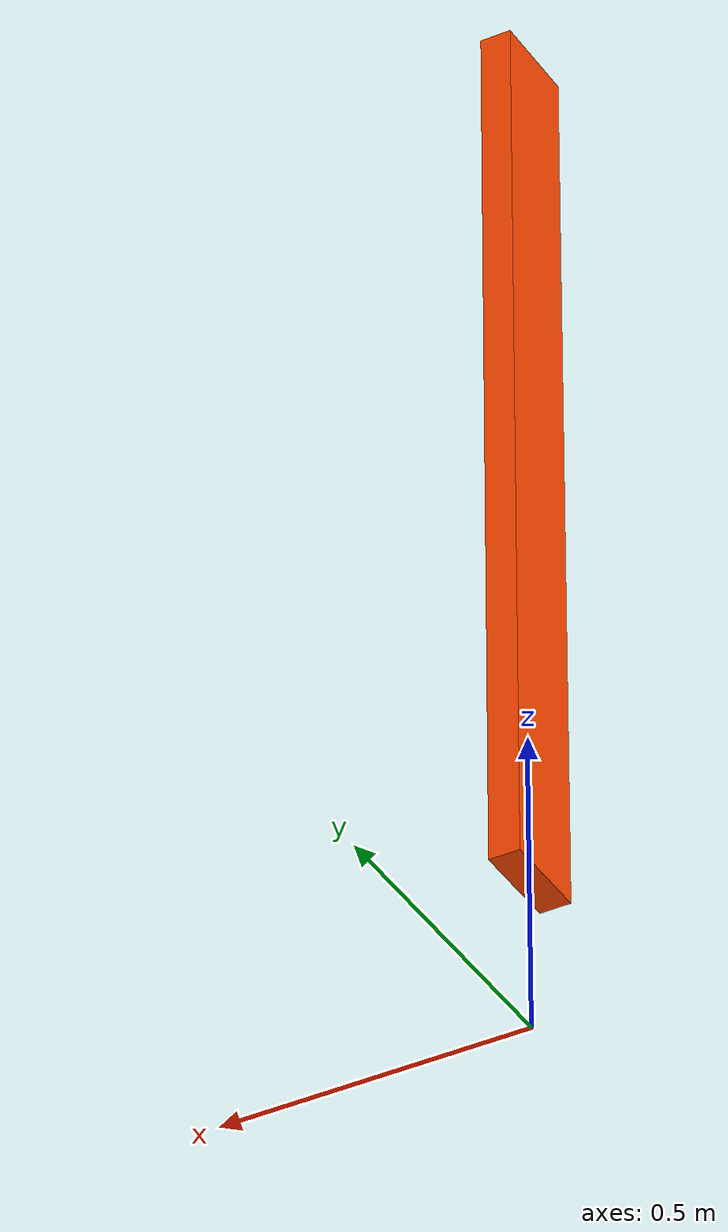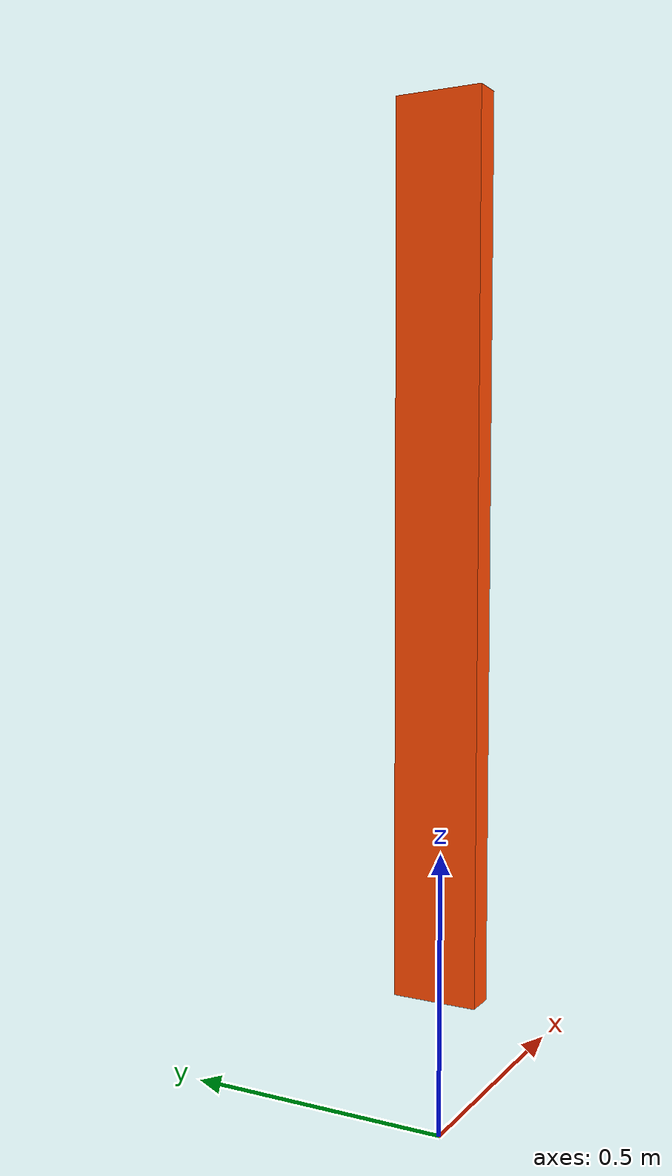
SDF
<?xml version="1.0"?>
<sdf version="1.11">
  <model name="sauvc_orange_flare">
    <static>false</static>
    <link name="link">
      <collision name="orange_flare_collision">
        <pose>0 0 0 0 0 0</pose>
        <geometry>
          <mesh>
            <scale>1 1 1</scale>
            <uri>model://sauvc_orange_flare/orange_flare.dae</uri>
          </mesh>
        </geometry>
      </collision>

      <visual name="orange_flare">
        <cast_shadows>false</cast_shadows>
        <pose>0 0 0 0 0 0</pose>
        <geometry>
          <mesh>
            <scale>1 1 1</scale>
            <uri>model://sauvc_orange_flare/orange_flare.dae</uri>
          </mesh>
        </geometry>
      </visual>
    </link>
  </model>
</sdf>
